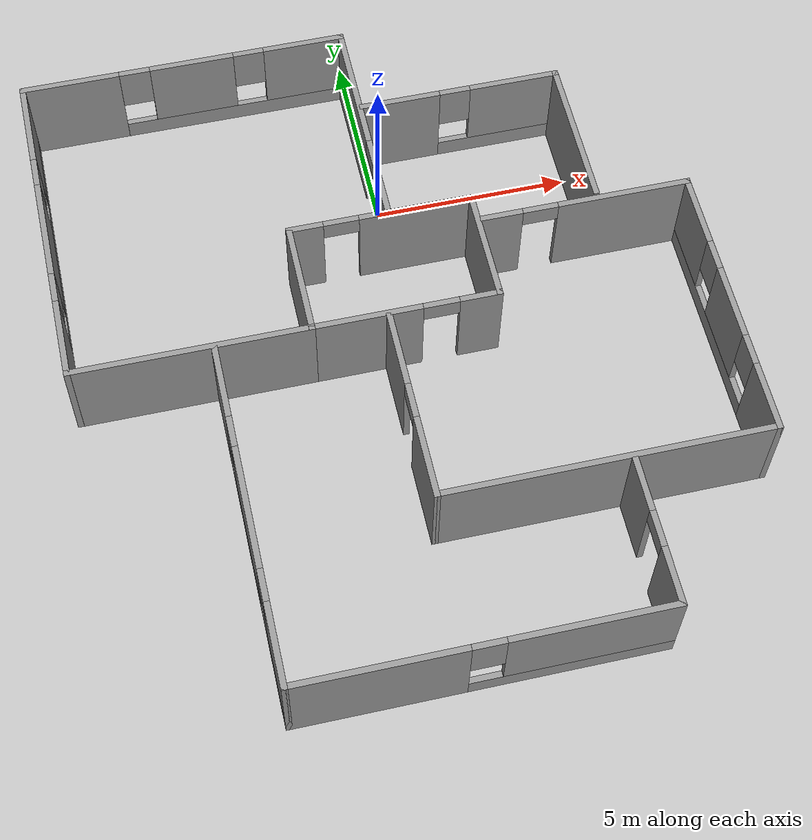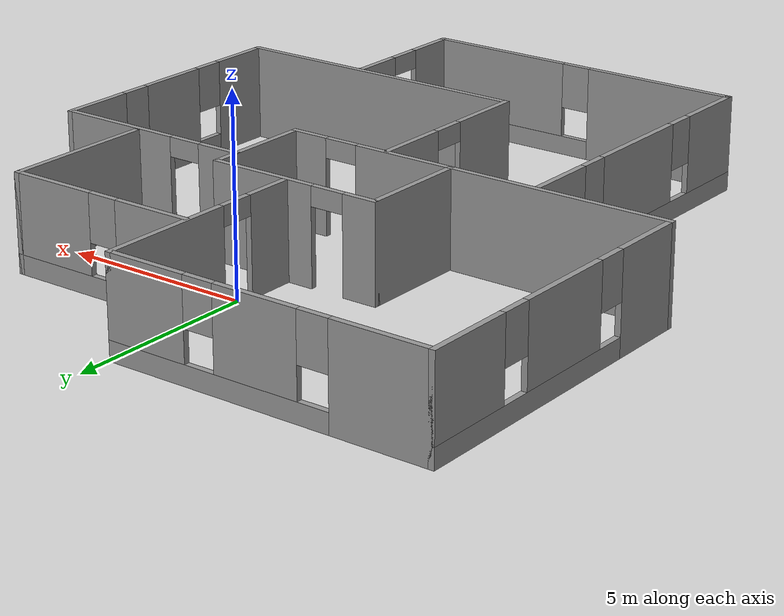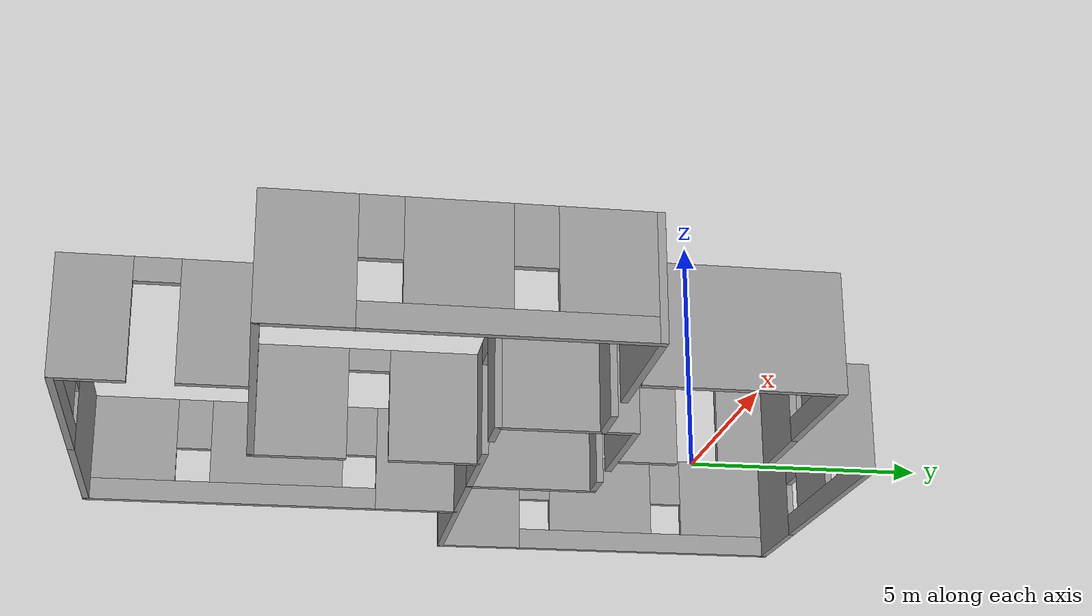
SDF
<?xml version='1.0'?>
<sdf version='1.7'>
  <model name='groundfloor'>
    <pose>-0.548729 -4.55238 0 0 -0 0</pose>
    <link name='Wall_0'>
      <collision name='Wall_0_Collision'>
        <geometry>
          <box>
            <size>3 0.15 2.5</size>
          </box>
        </geometry>
        <pose>0 0 1.25 0 -0 0</pose>
      </collision>
      <visual name='Wall_0_Visual'>
        <pose>0 0 1.25 0 -0 0</pose>
        <geometry>
          <box>
            <size>3 0.15 2.5</size>
          </box>
        </geometry>
        <material>
          <script>
            <uri>file://media/materials/scripts/gazebo.material</uri>
            <name>Gazebo/Grey</name>
          </script>
          <ambient>1 1 1 1</ambient>
        </material>
        <meta>
          <layer>0</layer>
        </meta>
      </visual>
      <pose>-2.06127 1.45738 0 0 -0 1.5708</pose>
    </link>
    <link name='Wall_1'>
      <pose>0.238729 2.88238 0 0 -0 0</pose>
      <visual name='Wall_1_Visual_0'>
        <pose>-1.91205 0 1.25 0 -0 0</pose>
        <geometry>
          <box>
            <size>0.925905 0.15 2.5</size>
          </box>
        </geometry>
        <material>
          <script>
            <uri>file://media/materials/scripts/gazebo.material</uri>
            <name>Gazebo/Grey</name>
          </script>
          <ambient>1 1 1 1</ambient>
        </material>
        <meta>
          <layer>0</layer>
        </meta>
      </visual>
      <collision name='Wall_1_Collision_0'>
        <geometry>
          <box>
            <size>0.925905 0.15 2.5</size>
          </box>
        </geometry>
        <pose>-1.91205 0 1.25 0 -0 0</pose>
      </collision>
      <visual name='Wall_1_Visual_1'>
        <pose>0.912952 0 1.25 0 -0 0</pose>
        <geometry>
          <box>
            <size>2.92409 0.15 2.5</size>
          </box>
        </geometry>
        <material>
          <script>
            <uri>file://media/materials/scripts/gazebo.material</uri>
            <name>Gazebo/Grey</name>
          </script>
          <ambient>1 1 1 1</ambient>
        </material>
        <meta>
          <layer>0</layer>
        </meta>
      </visual>
      <collision name='Wall_1_Collision_1'>
        <geometry>
          <box>
            <size>2.92409 0.15 2.5</size>
          </box>
        </geometry>
        <pose>0.912952 0 1.25 0 -0 0</pose>
      </collision>
      <visual name='Wall_1_Visual_2'>
        <pose>-0.999095 0 2.25 0 -0 0</pose>
        <geometry>
          <box>
            <size>0.9 0.15 0.5</size>
          </box>
        </geometry>
        <material>
          <script>
            <uri>file://media/materials/scripts/gazebo.material</uri>
            <name>Gazebo/Grey</name>
          </script>
          <ambient>1 1 1 1</ambient>
        </material>
        <meta>
          <layer>0</layer>
        </meta>
      </visual>
      <collision name='Wall_1_Collision_2'>
        <geometry>
          <box>
            <size>0.9 0.15 0.5</size>
          </box>
        </geometry>
        <pose>-0.999095 0 2.25 0 -0 0</pose>
      </collision>
    </link>
    <link name='Wall_19'>
      <pose>-0.188728 -2.47429 0 0 -0 -1.5708</pose>
      <visual name='Wall_19_Visual_0'>
        <pose>-1.50515 0 1.25 0 -0 0</pose>
        <geometry>
          <box>
            <size>1.9897 0.15 2.5</size>
          </box>
        </geometry>
        <material>
          <script>
            <uri>file://media/materials/scripts/gazebo.material</uri>
            <name>Gazebo/Grey</name>
          </script>
          <ambient>1 1 1 1</ambient>
        </material>
        <meta>
          <layer>0</layer>
        </meta>
      </visual>
      <collision name='Wall_19_Collision_0'>
        <geometry>
          <box>
            <size>1.9897 0.15 2.5</size>
          </box>
        </geometry>
        <pose>-1.50515 0 1.25 0 -0 0</pose>
      </collision>
      <visual name='Wall_19_Visual_1'>
        <pose>1.44485 0 1.25 0 -0 0</pose>
        <geometry>
          <box>
            <size>2.1103 0.15 2.5</size>
          </box>
        </geometry>
        <material>
          <script>
            <uri>file://media/materials/scripts/gazebo.material</uri>
            <name>Gazebo/Grey</name>
          </script>
          <ambient>1 1 1 1</ambient>
        </material>
        <meta>
          <layer>0</layer>
        </meta>
      </visual>
      <collision name='Wall_19_Collision_1'>
        <geometry>
          <box>
            <size>2.1103 0.15 2.5</size>
          </box>
        </geometry>
        <pose>1.44485 0 1.25 0 -0 0</pose>
      </collision>
      <visual name='Wall_19_Visual_2'>
        <pose>-0.060303 0 2.25 0 -0 0</pose>
        <geometry>
          <box>
            <size>0.9 0.15 0.5</size>
          </box>
        </geometry>
        <material>
          <script>
            <uri>file://media/materials/scripts/gazebo.material</uri>
            <name>Gazebo/Grey</name>
          </script>
          <ambient>1 1 1 1</ambient>
        </material>
        <meta>
          <layer>0</layer>
        </meta>
      </visual>
      <collision name='Wall_19_Collision_2'>
        <geometry>
          <box>
            <size>0.9 0.15 0.5</size>
          </box>
        </geometry>
        <pose>-0.060303 0 2.25 0 -0 0</pose>
      </collision>
    </link>
    <link name='Wall_2'>
      <collision name='Wall_2_Collision'>
        <geometry>
          <box>
            <size>3 0.15 2.5</size>
          </box>
        </geometry>
        <pose>0 0 1.25 0 -0 0</pose>
      </collision>
      <visual name='Wall_2_Visual'>
        <pose>0 0 1.25 0 -0 0</pose>
        <geometry>
          <box>
            <size>3 0.15 2.5</size>
          </box>
        </geometry>
        <material>
          <script>
            <uri>file://media/materials/scripts/gazebo.material</uri>
            <name>Gazebo/Grey</name>
          </script>
          <ambient>1 1 1 1</ambient>
        </material>
        <meta>
          <layer>0</layer>
        </meta>
      </visual>
      <pose>2.53873 1.45738 0 0 -0 -1.5708</pose>
    </link>
    <link name='Wall_20'>
      <collision name='Wall_20_Collision'>
        <geometry>
          <box>
            <size>8.25 0.15 2.5</size>
          </box>
        </geometry>
        <pose>0 0 1.25 0 -0 0</pose>
      </collision>
      <visual name='Wall_20_Visual'>
        <pose>0 0 1.25 0 -0 0</pose>
        <geometry>
          <box>
            <size>8.25 0.15 2.5</size>
          </box>
        </geometry>
        <material>
          <script>
            <uri>file://media/materials/scripts/gazebo.material</uri>
            <name>Gazebo/Grey</name>
          </script>
          <ambient>1 1 1 1</ambient>
        </material>
        <meta>
          <layer>0</layer>
        </meta>
      </visual>
      <pose>3.86127 -4.89929 0 0 -0 0</pose>
    </link>
    <link name='Wall_21'>
      <pose>7.91127 -1.34929 0 0 -0 1.5708</pose>
      <visual name='Wall_21_Visual_0'>
        <pose>-2.73833 0 1.25 0 -0 0</pose>
        <geometry>
          <box>
            <size>1.77334 0.15 2.5</size>
          </box>
        </geometry>
        <material>
          <script>
            <uri>file://media/materials/scripts/gazebo.material</uri>
            <name>Gazebo/Grey</name>
          </script>
          <ambient>1 1 1 1</ambient>
        </material>
        <meta>
          <layer>0</layer>
        </meta>
      </visual>
      <collision name='Wall_21_Collision_0'>
        <geometry>
          <box>
            <size>1.77334 0.15 2.5</size>
          </box>
        </geometry>
        <pose>-2.73833 0 1.25 0 -0 0</pose>
      </collision>
      <visual name='Wall_21_Visual_1'>
        <pose>0.886668 0 0.25 0 -0 0</pose>
        <geometry>
          <box>
            <size>5.47666 0.15 0.5</size>
          </box>
        </geometry>
        <material>
          <script>
            <uri>file://media/materials/scripts/gazebo.material</uri>
            <name>Gazebo/Grey</name>
          </script>
          <ambient>1 1 1 1</ambient>
        </material>
        <meta>
          <layer>0</layer>
        </meta>
      </visual>
      <collision name='Wall_21_Collision_1'>
        <geometry>
          <box>
            <size>5.47666 0.15 0.5</size>
          </box>
        </geometry>
        <pose>0.886668 0 0.25 0 -0 0</pose>
      </collision>
      <visual name='Wall_21_Visual_2'>
        <pose>-0.079692 0 1.5 0 -0 0</pose>
        <geometry>
          <box>
            <size>1.94394 0.15 2</size>
          </box>
        </geometry>
        <material>
          <script>
            <uri>file://media/materials/scripts/gazebo.material</uri>
            <name>Gazebo/Grey</name>
          </script>
          <ambient>1 1 1 1</ambient>
        </material>
        <meta>
          <layer>0</layer>
        </meta>
      </visual>
      <collision name='Wall_21_Collision_2'>
        <geometry>
          <box>
            <size>1.94394 0.15 2</size>
          </box>
        </geometry>
        <pose>-0.079692 0 1.5 0 -0 0</pose>
      </collision>
      <visual name='Wall_21_Visual_3'>
        <pose>2.65864 0 1.5 0 -0 0</pose>
        <geometry>
          <box>
            <size>1.93272 0.15 2</size>
          </box>
        </geometry>
        <material>
          <script>
            <uri>file://media/materials/scripts/gazebo.material</uri>
            <name>Gazebo/Grey</name>
          </script>
          <ambient>1 1 1 1</ambient>
        </material>
        <meta>
          <layer>0</layer>
        </meta>
      </visual>
      <collision name='Wall_21_Collision_3'>
        <geometry>
          <box>
            <size>1.93272 0.15 2</size>
          </box>
        </geometry>
        <pose>2.65864 0 1.5 0 -0 0</pose>
      </collision>
      <visual name='Wall_21_Visual_4'>
        <pose>-1.45166 0 1.9 0 -0 0</pose>
        <geometry>
          <box>
            <size>0.8 0.15 1.2</size>
          </box>
        </geometry>
        <material>
          <script>
            <uri>file://media/materials/scripts/gazebo.material</uri>
            <name>Gazebo/Grey</name>
          </script>
          <ambient>1 1 1 1</ambient>
        </material>
        <meta>
          <layer>0</layer>
        </meta>
      </visual>
      <collision name='Wall_21_Collision_4'>
        <geometry>
          <box>
            <size>0.8 0.15 1.2</size>
          </box>
        </geometry>
        <pose>-1.45166 0 1.9 0 -0 0</pose>
      </collision>
      <visual name='Wall_21_Visual_5'>
        <pose>1.29228 0 1.9 0 -0 0</pose>
        <geometry>
          <box>
            <size>0.8 0.15 1.2</size>
          </box>
        </geometry>
        <material>
          <script>
            <uri>file://media/materials/scripts/gazebo.material</uri>
            <name>Gazebo/Grey</name>
          </script>
          <ambient>1 1 1 1</ambient>
        </material>
        <meta>
          <layer>0</layer>
        </meta>
      </visual>
      <collision name='Wall_21_Collision_5'>
        <geometry>
          <box>
            <size>0.8 0.15 1.2</size>
          </box>
        </geometry>
        <pose>1.29228 0 1.9 0 -0 0</pose>
      </collision>
    </link>
    <link name='Wall_22'>
      <pose>5.23627 2.20071 0 0 -0 3.14159</pose>
      <visual name='Wall_22_Visual_0'>
        <pose>-1.04661 0 1.25 0 -0 0</pose>
        <geometry>
          <box>
            <size>3.40679 0.15 2.5</size>
          </box>
        </geometry>
        <material>
          <script>
            <uri>file://media/materials/scripts/gazebo.material</uri>
            <name>Gazebo/Grey</name>
          </script>
          <ambient>1 1 1 1</ambient>
        </material>
        <meta>
          <layer>0</layer>
        </meta>
      </visual>
      <collision name='Wall_22_Collision_0'>
        <geometry>
          <box>
            <size>3.40679 0.15 2.5</size>
          </box>
        </geometry>
        <pose>-1.04661 0 1.25 0 -0 0</pose>
      </collision>
      <visual name='Wall_22_Visual_1'>
        <pose>2.1534 0 1.25 0 -0 0</pose>
        <geometry>
          <box>
            <size>1.19321 0.15 2.5</size>
          </box>
        </geometry>
        <material>
          <script>
            <uri>file://media/materials/scripts/gazebo.material</uri>
            <name>Gazebo/Grey</name>
          </script>
          <ambient>1 1 1 1</ambient>
        </material>
        <meta>
          <layer>0</layer>
        </meta>
      </visual>
      <collision name='Wall_22_Collision_1'>
        <geometry>
          <box>
            <size>1.19321 0.15 2.5</size>
          </box>
        </geometry>
        <pose>2.1534 0 1.25 0 -0 0</pose>
      </collision>
      <visual name='Wall_22_Visual_2'>
        <pose>1.10679 0 2.25 0 -0 0</pose>
        <geometry>
          <box>
            <size>0.9 0.15 0.5</size>
          </box>
        </geometry>
        <material>
          <script>
            <uri>file://media/materials/scripts/gazebo.material</uri>
            <name>Gazebo/Grey</name>
          </script>
          <ambient>1 1 1 1</ambient>
        </material>
        <meta>
          <layer>0</layer>
        </meta>
      </visual>
      <collision name='Wall_22_Collision_2'>
        <geometry>
          <box>
            <size>0.9 0.15 0.5</size>
          </box>
        </geometry>
        <pose>1.10679 0 2.25 0 -0 0</pose>
      </collision>
    </link>
    <link name='Wall_24'>
      <pose>3.05607 6.23999 0 0 -0 0</pose>
      <visual name='Wall_24_Visual_0'>
        <pose>-1.57383 0 1.25 0 -0 0</pose>
        <geometry>
          <box>
            <size>2.10234 0.15 2.5</size>
          </box>
        </geometry>
        <material>
          <script>
            <uri>file://media/materials/scripts/gazebo.material</uri>
            <name>Gazebo/Grey</name>
          </script>
          <ambient>1 1 1 1</ambient>
        </material>
        <meta>
          <layer>0</layer>
        </meta>
      </visual>
      <collision name='Wall_24_Collision_0'>
        <geometry>
          <box>
            <size>2.10234 0.15 2.5</size>
          </box>
        </geometry>
        <pose>-1.57383 0 1.25 0 -0 0</pose>
      </collision>
      <visual name='Wall_24_Visual_1'>
        <pose>1.05117 0 0.25 0 -0 0</pose>
        <geometry>
          <box>
            <size>3.14766 0.15 0.5</size>
          </box>
        </geometry>
        <material>
          <script>
            <uri>file://media/materials/scripts/gazebo.material</uri>
            <name>Gazebo/Grey</name>
          </script>
          <ambient>1 1 1 1</ambient>
        </material>
        <meta>
          <layer>0</layer>
        </meta>
      </visual>
      <collision name='Wall_24_Collision_1'>
        <geometry>
          <box>
            <size>3.14766 0.15 0.5</size>
          </box>
        </geometry>
        <pose>1.05117 0 0.25 0 -0 0</pose>
      </collision>
      <visual name='Wall_24_Visual_2'>
        <pose>1.45117 0 1.5 0 -0 0</pose>
        <geometry>
          <box>
            <size>2.34767 0.15 2</size>
          </box>
        </geometry>
        <material>
          <script>
            <uri>file://media/materials/scripts/gazebo.material</uri>
            <name>Gazebo/Grey</name>
          </script>
          <ambient>1 1 1 1</ambient>
        </material>
        <meta>
          <layer>0</layer>
        </meta>
      </visual>
      <collision name='Wall_24_Collision_2'>
        <geometry>
          <box>
            <size>2.34767 0.15 2</size>
          </box>
        </geometry>
        <pose>1.45117 0 1.5 0 -0 0</pose>
      </collision>
      <visual name='Wall_24_Visual_3'>
        <pose>-0.122665 0 1.9 0 -0 0</pose>
        <geometry>
          <box>
            <size>0.8 0.15 1.2</size>
          </box>
        </geometry>
        <material>
          <script>
            <uri>file://media/materials/scripts/gazebo.material</uri>
            <name>Gazebo/Grey</name>
          </script>
          <ambient>1 1 1 1</ambient>
        </material>
        <meta>
          <layer>0</layer>
        </meta>
      </visual>
      <collision name='Wall_24_Collision_3'>
        <geometry>
          <box>
            <size>0.8 0.15 1.2</size>
          </box>
        </geometry>
        <pose>-0.122665 0 1.9 0 -0 0</pose>
      </collision>
    </link>
    <link name='Wall_25'>
      <collision name='Wall_25_Collision'>
        <geometry>
          <box>
            <size>4 0.15 2.5</size>
          </box>
        </geometry>
        <pose>0 0 1.25 0 -0 0</pose>
      </collision>
      <visual name='Wall_25_Visual'>
        <pose>0 0 1.25 0 -0 0</pose>
        <geometry>
          <box>
            <size>4 0.15 2.5</size>
          </box>
        </geometry>
        <material>
          <script>
            <uri>file://media/materials/scripts/gazebo.material</uri>
            <name>Gazebo/Grey</name>
          </script>
          <ambient>1 1 1 1</ambient>
        </material>
        <meta>
          <layer>0</layer>
        </meta>
      </visual>
      <pose>5.60607 4.31499 0 0 -0 -1.5708</pose>
    </link>
    <link name='Wall_28'>
      <pose>-4.4172 -4.33238 0 0 -0 -1.5708</pose>
      <visual name='Wall_28_Visual_0'>
        <pose>-3.39443 0 1.25 0 -0 0</pose>
        <geometry>
          <box>
            <size>1.96113 0.15 2.5</size>
          </box>
        </geometry>
        <material>
          <script>
            <uri>file://media/materials/scripts/gazebo.material</uri>
            <name>Gazebo/Grey</name>
          </script>
          <ambient>1 1 1 1</ambient>
        </material>
        <meta>
          <layer>0</layer>
        </meta>
      </visual>
      <collision name='Wall_28_Collision_0'>
        <geometry>
          <box>
            <size>1.96113 0.15 2.5</size>
          </box>
        </geometry>
        <pose>-3.39443 0 1.25 0 -0 0</pose>
      </collision>
      <visual name='Wall_28_Visual_1'>
        <pose>0.980566 0 0.25 0 -0 0</pose>
        <geometry>
          <box>
            <size>6.78887 0.15 0.5</size>
          </box>
        </geometry>
        <material>
          <script>
            <uri>file://media/materials/scripts/gazebo.material</uri>
            <name>Gazebo/Grey</name>
          </script>
          <ambient>1 1 1 1</ambient>
        </material>
        <meta>
          <layer>0</layer>
        </meta>
      </visual>
      <collision name='Wall_28_Collision_1'>
        <geometry>
          <box>
            <size>6.78887 0.15 0.5</size>
          </box>
        </geometry>
        <pose>0.980566 0 0.25 0 -0 0</pose>
      </collision>
      <visual name='Wall_28_Visual_2'>
        <pose>-0.059863 0 1.5 0 -0 0</pose>
        <geometry>
          <box>
            <size>3.10801 0.15 2</size>
          </box>
        </geometry>
        <material>
          <script>
            <uri>file://media/materials/scripts/gazebo.material</uri>
            <name>Gazebo/Grey</name>
          </script>
          <ambient>1 1 1 1</ambient>
        </material>
        <meta>
          <layer>0</layer>
        </meta>
      </visual>
      <collision name='Wall_28_Collision_2'>
        <geometry>
          <box>
            <size>3.10801 0.15 2</size>
          </box>
        </geometry>
        <pose>-0.059863 0 1.5 0 -0 0</pose>
      </collision>
      <visual name='Wall_28_Visual_3'>
        <pose>3.33457 0 1.5 0 -0 0</pose>
        <geometry>
          <box>
            <size>2.08086 0.15 2</size>
          </box>
        </geometry>
        <material>
          <script>
            <uri>file://media/materials/scripts/gazebo.material</uri>
            <name>Gazebo/Grey</name>
          </script>
          <ambient>1 1 1 1</ambient>
        </material>
        <meta>
          <layer>0</layer>
        </meta>
      </visual>
      <collision name='Wall_28_Collision_3'>
        <geometry>
          <box>
            <size>2.08086 0.15 2</size>
          </box>
        </geometry>
        <pose>3.33457 0 1.5 0 -0 0</pose>
      </collision>
      <visual name='Wall_28_Visual_4'>
        <pose>-2.01387 0 1.9 0 -0 0</pose>
        <geometry>
          <box>
            <size>0.8 0.15 1.2</size>
          </box>
        </geometry>
        <material>
          <script>
            <uri>file://media/materials/scripts/gazebo.material</uri>
            <name>Gazebo/Grey</name>
          </script>
          <ambient>1 1 1 1</ambient>
        </material>
        <meta>
          <layer>0</layer>
        </meta>
      </visual>
      <collision name='Wall_28_Collision_4'>
        <geometry>
          <box>
            <size>0.8 0.15 1.2</size>
          </box>
        </geometry>
        <pose>-2.01387 0 1.9 0 -0 0</pose>
      </collision>
      <visual name='Wall_28_Visual_5'>
        <pose>1.89414 0 1.9 0 -0 0</pose>
        <geometry>
          <box>
            <size>0.8 0.15 1.2</size>
          </box>
        </geometry>
        <material>
          <script>
            <uri>file://media/materials/scripts/gazebo.material</uri>
            <name>Gazebo/Grey</name>
          </script>
          <ambient>1 1 1 1</ambient>
        </material>
        <meta>
          <layer>0</layer>
        </meta>
      </visual>
      <collision name='Wall_28_Collision_5'>
        <geometry>
          <box>
            <size>0.8 0.15 1.2</size>
          </box>
        </geometry>
        <pose>1.89414 0 1.9 0 -0 0</pose>
      </collision>
    </link>
    <link name='Wall_3'>
      <pose>0.238729 0.032382 0 0 -0 3.14159</pose>
      <visual name='Wall_3_Visual_0'>
        <pose>-1.84519 0 1.25 0 -0 0</pose>
        <geometry>
          <box>
            <size>1.05962 0.15 2.5</size>
          </box>
        </geometry>
        <material>
          <script>
            <uri>file://media/materials/scripts/gazebo.material</uri>
            <name>Gazebo/Grey</name>
          </script>
          <ambient>1 1 1 1</ambient>
        </material>
        <meta>
          <layer>0</layer>
        </meta>
      </visual>
      <collision name='Wall_3_Collision_0'>
        <geometry>
          <box>
            <size>1.05962 0.15 2.5</size>
          </box>
        </geometry>
        <pose>-1.84519 0 1.25 0 -0 0</pose>
      </collision>
      <visual name='Wall_3_Visual_1'>
        <pose>0.97981 0 1.25 0 -0 0</pose>
        <geometry>
          <box>
            <size>2.79038 0.15 2.5</size>
          </box>
        </geometry>
        <material>
          <script>
            <uri>file://media/materials/scripts/gazebo.material</uri>
            <name>Gazebo/Grey</name>
          </script>
          <ambient>1 1 1 1</ambient>
        </material>
        <meta>
          <layer>0</layer>
        </meta>
      </visual>
      <collision name='Wall_3_Collision_1'>
        <geometry>
          <box>
            <size>2.79038 0.15 2.5</size>
          </box>
        </geometry>
        <pose>0.97981 0 1.25 0 -0 0</pose>
      </collision>
      <visual name='Wall_3_Visual_2'>
        <pose>-0.865379 0 2.25 0 -0 0</pose>
        <geometry>
          <box>
            <size>0.9 0.15 0.5</size>
          </box>
        </geometry>
        <material>
          <script>
            <uri>file://media/materials/scripts/gazebo.material</uri>
            <name>Gazebo/Grey</name>
          </script>
          <ambient>1 1 1 1</ambient>
        </material>
        <meta>
          <layer>0</layer>
        </meta>
      </visual>
      <collision name='Wall_3_Collision_2'>
        <geometry>
          <box>
            <size>0.9 0.15 0.5</size>
          </box>
        </geometry>
        <pose>-0.865379 0 2.25 0 -0 0</pose>
      </collision>
    </link>
    <link name='Wall_30'>
      <pose>0.007801 -8.63238 0 0 -0 0</pose>
      <visual name='Wall_30_Visual_0'>
        <pose>-2.40855 0 1.25 0 -0 0</pose>
        <geometry>
          <box>
            <size>4.18291 0.15 2.5</size>
          </box>
        </geometry>
        <material>
          <script>
            <uri>file://media/materials/scripts/gazebo.material</uri>
            <name>Gazebo/Grey</name>
          </script>
          <ambient>1 1 1 1</ambient>
        </material>
        <meta>
          <layer>0</layer>
        </meta>
      </visual>
      <collision name='Wall_30_Collision_0'>
        <geometry>
          <box>
            <size>4.18291 0.15 2.5</size>
          </box>
        </geometry>
        <pose>-2.40855 0 1.25 0 -0 0</pose>
      </collision>
      <visual name='Wall_30_Visual_1'>
        <pose>2.09145 0 0.25 0 -0 0</pose>
        <geometry>
          <box>
            <size>4.81709 0.15 0.5</size>
          </box>
        </geometry>
        <material>
          <script>
            <uri>file://media/materials/scripts/gazebo.material</uri>
            <name>Gazebo/Grey</name>
          </script>
          <ambient>1 1 1 1</ambient>
        </material>
        <meta>
          <layer>0</layer>
        </meta>
      </visual>
      <collision name='Wall_30_Collision_1'>
        <geometry>
          <box>
            <size>4.81709 0.15 0.5</size>
          </box>
        </geometry>
        <pose>2.09145 0 0.25 0 -0 0</pose>
      </collision>
      <visual name='Wall_30_Visual_2'>
        <pose>2.49145 0 1.5 0 -0 0</pose>
        <geometry>
          <box>
            <size>4.01709 0.15 2</size>
          </box>
        </geometry>
        <material>
          <script>
            <uri>file://media/materials/scripts/gazebo.material</uri>
            <name>Gazebo/Grey</name>
          </script>
          <ambient>1 1 1 1</ambient>
        </material>
        <meta>
          <layer>0</layer>
        </meta>
      </visual>
      <collision name='Wall_30_Collision_2'>
        <geometry>
          <box>
            <size>4.01709 0.15 2</size>
          </box>
        </geometry>
        <pose>2.49145 0 1.5 0 -0 0</pose>
      </collision>
      <visual name='Wall_30_Visual_3'>
        <pose>0.082907 0 1.9 0 -0 0</pose>
        <geometry>
          <box>
            <size>0.8 0.15 1.2</size>
          </box>
        </geometry>
        <material>
          <script>
            <uri>file://media/materials/scripts/gazebo.material</uri>
            <name>Gazebo/Grey</name>
          </script>
          <ambient>1 1 1 1</ambient>
        </material>
        <meta>
          <layer>0</layer>
        </meta>
      </visual>
      <collision name='Wall_30_Collision_3'>
        <geometry>
          <box>
            <size>0.8 0.15 1.2</size>
          </box>
        </geometry>
        <pose>0.082907 0 1.9 0 -0 0</pose>
      </collision>
    </link>
    <link name='Wall_31'>
      <pose>4.4328 -6.83238 0 0 -0 1.5708</pose>
      <visual name='Wall_31_Visual_0'>
        <pose>-1.14195 0 1.25 0 -0 0</pose>
        <geometry>
          <box>
            <size>1.46609 0.15 2.5</size>
          </box>
        </geometry>
        <material>
          <script>
            <uri>file://media/materials/scripts/gazebo.material</uri>
            <name>Gazebo/Grey</name>
          </script>
          <ambient>1 1 1 1</ambient>
        </material>
        <meta>
          <layer>0</layer>
        </meta>
      </visual>
      <collision name='Wall_31_Collision_0'>
        <geometry>
          <box>
            <size>1.46609 0.15 2.5</size>
          </box>
        </geometry>
        <pose>-1.14195 0 1.25 0 -0 0</pose>
      </collision>
      <visual name='Wall_31_Visual_1'>
        <pose>1.18305 0 1.25 0 -0 0</pose>
        <geometry>
          <box>
            <size>1.38391 0.15 2.5</size>
          </box>
        </geometry>
        <material>
          <script>
            <uri>file://media/materials/scripts/gazebo.material</uri>
            <name>Gazebo/Grey</name>
          </script>
          <ambient>1 1 1 1</ambient>
        </material>
        <meta>
          <layer>0</layer>
        </meta>
      </visual>
      <collision name='Wall_31_Collision_1'>
        <geometry>
          <box>
            <size>1.38391 0.15 2.5</size>
          </box>
        </geometry>
        <pose>1.18305 0 1.25 0 -0 0</pose>
      </collision>
      <visual name='Wall_31_Visual_2'>
        <pose>0.041094 0 2.25 0 -0 0</pose>
        <geometry>
          <box>
            <size>0.9 0.15 0.5</size>
          </box>
        </geometry>
        <material>
          <script>
            <uri>file://media/materials/scripts/gazebo.material</uri>
            <name>Gazebo/Grey</name>
          </script>
          <ambient>1 1 1 1</ambient>
        </material>
        <meta>
          <layer>0</layer>
        </meta>
      </visual>
      <collision name='Wall_31_Collision_2'>
        <geometry>
          <box>
            <size>0.9 0.15 0.5</size>
          </box>
        </geometry>
        <pose>0.041094 0 2.25 0 -0 0</pose>
      </collision>
    </link>
    <link name='Wall_4'>
      <collision name='Wall_4_Collision'>
        <geometry>
          <box>
            <size>6 0.15 2.5</size>
          </box>
        </geometry>
        <pose>0 0 1.25 0 -0 0</pose>
      </collision>
      <visual name='Wall_4_Visual'>
        <pose>0 0 1.25 0 -0 0</pose>
        <geometry>
          <box>
            <size>6 0.15 2.5</size>
          </box>
        </geometry>
        <material>
          <script>
            <uri>file://media/materials/scripts/gazebo.material</uri>
            <name>Gazebo/Grey</name>
          </script>
          <ambient>1 1 1 1</ambient>
        </material>
        <meta>
          <layer>0</layer>
        </meta>
      </visual>
      <pose>-4.98627 0.032382 0 0 -0 3.14159</pose>
    </link>
    <link name='Wall_5'>
      <pose>-7.91127 4.33238 0 0 -0 1.5708</pose>
      <visual name='Wall_5_Visual_0'>
        <pose>-3.31576 0 1.25 0 -0 0</pose>
        <geometry>
          <box>
            <size>2.11848 0.15 2.5</size>
          </box>
        </geometry>
        <material>
          <script>
            <uri>file://media/materials/scripts/gazebo.material</uri>
            <name>Gazebo/Grey</name>
          </script>
          <ambient>1 1 1 1</ambient>
        </material>
        <meta>
          <layer>0</layer>
        </meta>
      </visual>
      <collision name='Wall_5_Collision_0'>
        <geometry>
          <box>
            <size>2.11848 0.15 2.5</size>
          </box>
        </geometry>
        <pose>-3.31576 0 1.25 0 -0 0</pose>
      </collision>
      <visual name='Wall_5_Visual_1'>
        <pose>1.05924 0 0.25 0 -0 0</pose>
        <geometry>
          <box>
            <size>6.63152 0.15 0.5</size>
          </box>
        </geometry>
        <material>
          <script>
            <uri>file://media/materials/scripts/gazebo.material</uri>
            <name>Gazebo/Grey</name>
          </script>
          <ambient>1 1 1 1</ambient>
        </material>
        <meta>
          <layer>0</layer>
        </meta>
      </visual>
      <collision name='Wall_5_Collision_1'>
        <geometry>
          <box>
            <size>6.63152 0.15 0.5</size>
          </box>
        </geometry>
        <pose>1.05924 0 0.25 0 -0 0</pose>
      </collision>
      <visual name='Wall_5_Visual_2'>
        <pose>-0.1033 0 1.5 0 -0 0</pose>
        <geometry>
          <box>
            <size>2.70644 0.15 2</size>
          </box>
        </geometry>
        <material>
          <script>
            <uri>file://media/materials/scripts/gazebo.material</uri>
            <name>Gazebo/Grey</name>
          </script>
          <ambient>1 1 1 1</ambient>
        </material>
        <meta>
          <layer>0</layer>
        </meta>
      </visual>
      <collision name='Wall_5_Collision_2'>
        <geometry>
          <box>
            <size>2.70644 0.15 2</size>
          </box>
        </geometry>
        <pose>-0.1033 0 1.5 0 -0 0</pose>
      </collision>
      <visual name='Wall_5_Visual_3'>
        <pose>3.21246 0 1.5 0 -0 0</pose>
        <geometry>
          <box>
            <size>2.32508 0.15 2</size>
          </box>
        </geometry>
        <material>
          <script>
            <uri>file://media/materials/scripts/gazebo.material</uri>
            <name>Gazebo/Grey</name>
          </script>
          <ambient>1 1 1 1</ambient>
        </material>
        <meta>
          <layer>0</layer>
        </meta>
      </visual>
      <collision name='Wall_5_Collision_3'>
        <geometry>
          <box>
            <size>2.32508 0.15 2</size>
          </box>
        </geometry>
        <pose>3.21246 0 1.5 0 -0 0</pose>
      </collision>
      <visual name='Wall_5_Visual_4'>
        <pose>-1.85652 0 1.9 0 -0 0</pose>
        <geometry>
          <box>
            <size>0.8 0.15 1.2</size>
          </box>
        </geometry>
        <material>
          <script>
            <uri>file://media/materials/scripts/gazebo.material</uri>
            <name>Gazebo/Grey</name>
          </script>
          <ambient>1 1 1 1</ambient>
        </material>
        <meta>
          <layer>0</layer>
        </meta>
      </visual>
      <collision name='Wall_5_Collision_4'>
        <geometry>
          <box>
            <size>0.8 0.15 1.2</size>
          </box>
        </geometry>
        <pose>-1.85652 0 1.9 0 -0 0</pose>
      </collision>
      <visual name='Wall_5_Visual_5'>
        <pose>1.64992 0 1.9 0 -0 0</pose>
        <geometry>
          <box>
            <size>0.8 0.15 1.2</size>
          </box>
        </geometry>
        <material>
          <script>
            <uri>file://media/materials/scripts/gazebo.material</uri>
            <name>Gazebo/Grey</name>
          </script>
          <ambient>1 1 1 1</ambient>
        </material>
        <meta>
          <layer>0</layer>
        </meta>
      </visual>
      <collision name='Wall_5_Collision_5'>
        <geometry>
          <box>
            <size>0.8 0.15 1.2</size>
          </box>
        </geometry>
        <pose>1.64992 0 1.9 0 -0 0</pose>
      </collision>
    </link>
    <link name='Wall_6'>
      <pose>-3.73627 8.63238 0 0 -0 0</pose>
      <visual name='Wall_6_Visual_0'>
        <pose>-2.96536 0 1.25 0 -0 0</pose>
        <geometry>
          <box>
            <size>2.56928 0.15 2.5</size>
          </box>
        </geometry>
        <material>
          <script>
            <uri>file://media/materials/scripts/gazebo.material</uri>
            <name>Gazebo/Grey</name>
          </script>
          <ambient>1 1 1 1</ambient>
        </material>
        <meta>
          <layer>0</layer>
        </meta>
      </visual>
      <collision name='Wall_6_Collision_0'>
        <geometry>
          <box>
            <size>2.56928 0.15 2.5</size>
          </box>
        </geometry>
        <pose>-2.96536 0 1.25 0 -0 0</pose>
      </collision>
      <visual name='Wall_6_Visual_1'>
        <pose>1.28464 0 0.25 0 -0 0</pose>
        <geometry>
          <box>
            <size>5.93072 0.15 0.5</size>
          </box>
        </geometry>
        <material>
          <script>
            <uri>file://media/materials/scripts/gazebo.material</uri>
            <name>Gazebo/Grey</name>
          </script>
          <ambient>1 1 1 1</ambient>
        </material>
        <meta>
          <layer>0</layer>
        </meta>
      </visual>
      <collision name='Wall_6_Collision_1'>
        <geometry>
          <box>
            <size>5.93072 0.15 0.5</size>
          </box>
        </geometry>
        <pose>1.28464 0 0.25 0 -0 0</pose>
      </collision>
      <visual name='Wall_6_Visual_2'>
        <pose>0.214372 0 1.5 0 -0 0</pose>
        <geometry>
          <box>
            <size>2.1902 0.15 2</size>
          </box>
        </geometry>
        <material>
          <script>
            <uri>file://media/materials/scripts/gazebo.material</uri>
            <name>Gazebo/Grey</name>
          </script>
          <ambient>1 1 1 1</ambient>
        </material>
        <meta>
          <layer>0</layer>
        </meta>
      </visual>
      <collision name='Wall_6_Collision_2'>
        <geometry>
          <box>
            <size>2.1902 0.15 2</size>
          </box>
        </geometry>
        <pose>0.214372 0 1.5 0 -0 0</pose>
      </collision>
      <visual name='Wall_6_Visual_3'>
        <pose>3.17973 0 1.5 0 -0 0</pose>
        <geometry>
          <box>
            <size>2.14053 0.15 2</size>
          </box>
        </geometry>
        <material>
          <script>
            <uri>file://media/materials/scripts/gazebo.material</uri>
            <name>Gazebo/Grey</name>
          </script>
          <ambient>1 1 1 1</ambient>
        </material>
        <meta>
          <layer>0</layer>
        </meta>
      </visual>
      <collision name='Wall_6_Collision_3'>
        <geometry>
          <box>
            <size>2.14053 0.15 2</size>
          </box>
        </geometry>
        <pose>3.17973 0 1.5 0 -0 0</pose>
      </collision>
      <visual name='Wall_6_Visual_4'>
        <pose>-1.28072 0 1.9 0 -0 0</pose>
        <geometry>
          <box>
            <size>0.8 0.15 1.2</size>
          </box>
        </geometry>
        <material>
          <script>
            <uri>file://media/materials/scripts/gazebo.material</uri>
            <name>Gazebo/Grey</name>
          </script>
          <ambient>1 1 1 1</ambient>
        </material>
        <meta>
          <layer>0</layer>
        </meta>
      </visual>
      <collision name='Wall_6_Collision_4'>
        <geometry>
          <box>
            <size>0.8 0.15 1.2</size>
          </box>
        </geometry>
        <pose>-1.28072 0 1.9 0 -0 0</pose>
      </collision>
      <visual name='Wall_6_Visual_5'>
        <pose>1.70947 0 1.9 0 -0 0</pose>
        <geometry>
          <box>
            <size>0.8 0.15 1.2</size>
          </box>
        </geometry>
        <material>
          <script>
            <uri>file://media/materials/scripts/gazebo.material</uri>
            <name>Gazebo/Grey</name>
          </script>
          <ambient>1 1 1 1</ambient>
        </material>
        <meta>
          <layer>0</layer>
        </meta>
      </visual>
      <collision name='Wall_6_Collision_5'>
        <geometry>
          <box>
            <size>0.8 0.15 1.2</size>
          </box>
        </geometry>
        <pose>1.70947 0 1.9 0 -0 0</pose>
      </collision>
    </link>
    <link name='Wall_7'>
      <pose>0.438729 5.83238 0 0 -0 -1.5708</pose>
      <visual name='Wall_7_Visual_0'>
        <pose>-1.09237 0 1.25 0 -0 0</pose>
        <geometry>
          <box>
            <size>3.56526 0.15 2.5</size>
          </box>
        </geometry>
        <material>
          <script>
            <uri>file://media/materials/scripts/gazebo.material</uri>
            <name>Gazebo/Grey</name>
          </script>
          <ambient>1 1 1 1</ambient>
        </material>
        <meta>
          <layer>0</layer>
        </meta>
      </visual>
      <collision name='Wall_7_Collision_0'>
        <geometry>
          <box>
            <size>3.56526 0.15 2.5</size>
          </box>
        </geometry>
        <pose>-1.09237 0 1.25 0 -0 0</pose>
      </collision>
      <visual name='Wall_7_Visual_1'>
        <pose>2.23263 0 1.25 0 -0 0</pose>
        <geometry>
          <box>
            <size>1.28474 0.15 2.5</size>
          </box>
        </geometry>
        <material>
          <script>
            <uri>file://media/materials/scripts/gazebo.material</uri>
            <name>Gazebo/Grey</name>
          </script>
          <ambient>1 1 1 1</ambient>
        </material>
        <meta>
          <layer>0</layer>
        </meta>
      </visual>
      <collision name='Wall_7_Collision_1'>
        <geometry>
          <box>
            <size>1.28474 0.15 2.5</size>
          </box>
        </geometry>
        <pose>2.23263 0 1.25 0 -0 0</pose>
      </collision>
      <visual name='Wall_7_Visual_2'>
        <pose>1.14026 0 2.25 0 -0 0</pose>
        <geometry>
          <box>
            <size>0.9 0.15 0.5</size>
          </box>
        </geometry>
        <material>
          <script>
            <uri>file://media/materials/scripts/gazebo.material</uri>
            <name>Gazebo/Grey</name>
          </script>
          <ambient>1 1 1 1</ambient>
        </material>
        <meta>
          <layer>0</layer>
        </meta>
      </visual>
      <collision name='Wall_7_Collision_2'>
        <geometry>
          <box>
            <size>0.9 0.15 0.5</size>
          </box>
        </geometry>
        <pose>1.14026 0 2.25 0 -0 0</pose>
      </collision>
    </link>
    <static>1</static>
  </model>
</sdf>
